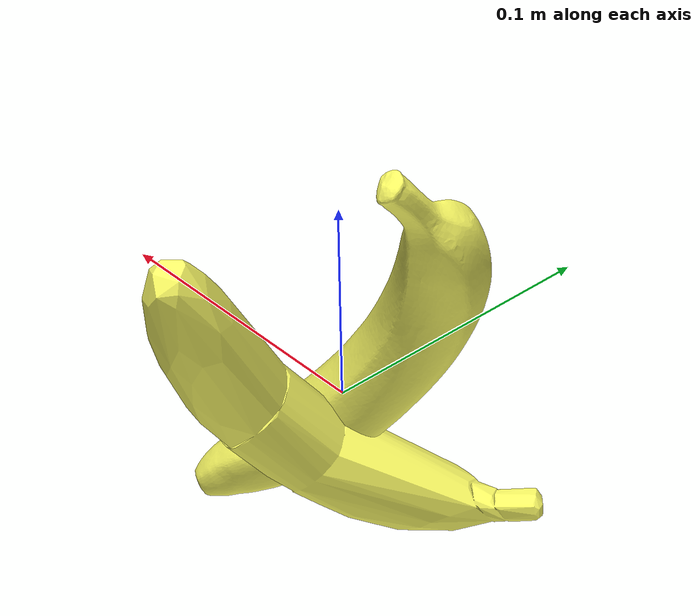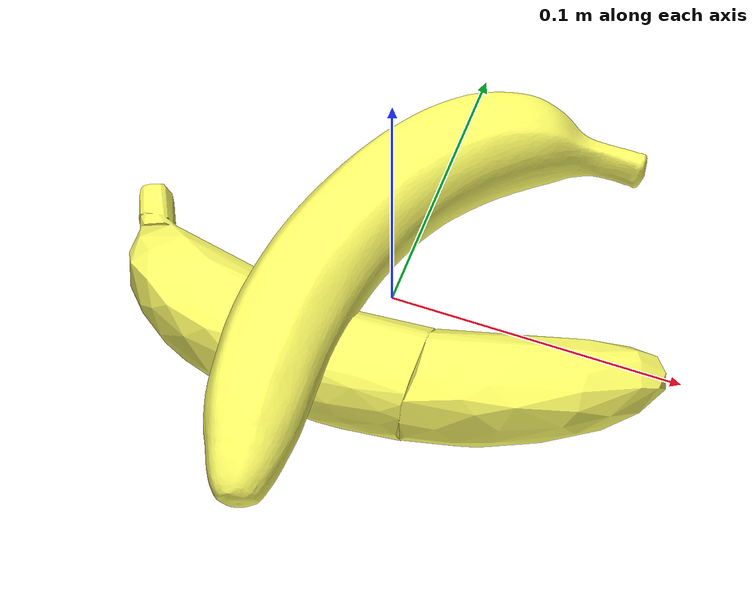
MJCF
<mujoco model="banana">
    <compiler angle="radian" meshdir="meshes/" />
    <size njmax="500" nconmax="100" />
    <asset>
        <mesh name="banana" file="banana.stl" />
        <mesh name="banana_collision" file="banana_collision.stl" />
    </asset>
    <worldbody>
        <geom type="mesh" contype="0" conaffinity="0" group="1" rgba="1 1 0.4 1" mesh="banana" />
        <geom type="mesh" rgba="1 1 0.4 1" mesh="banana_collision" />
    </worldbody>
</mujoco>
